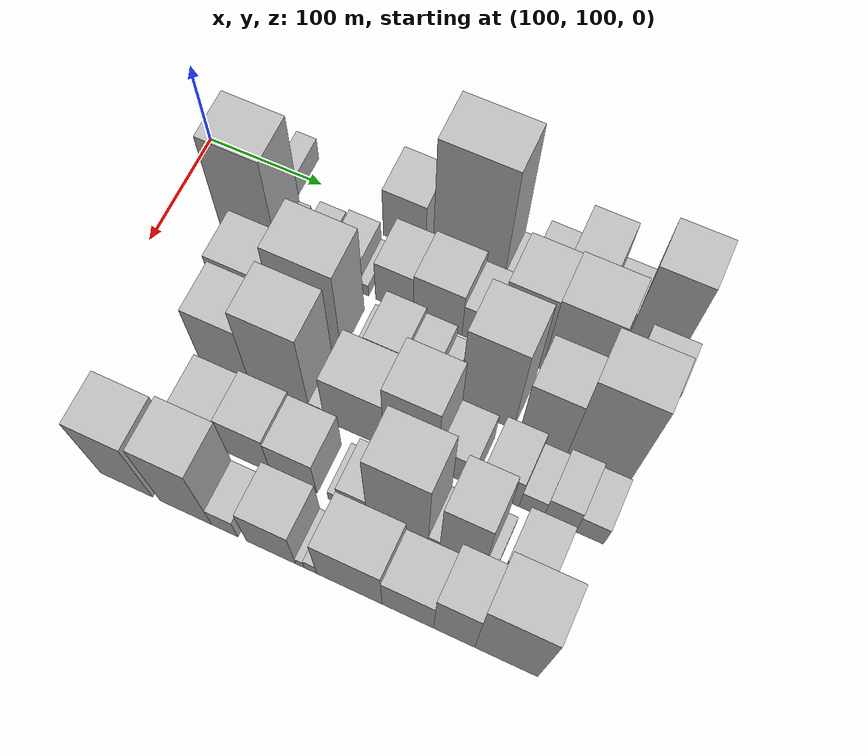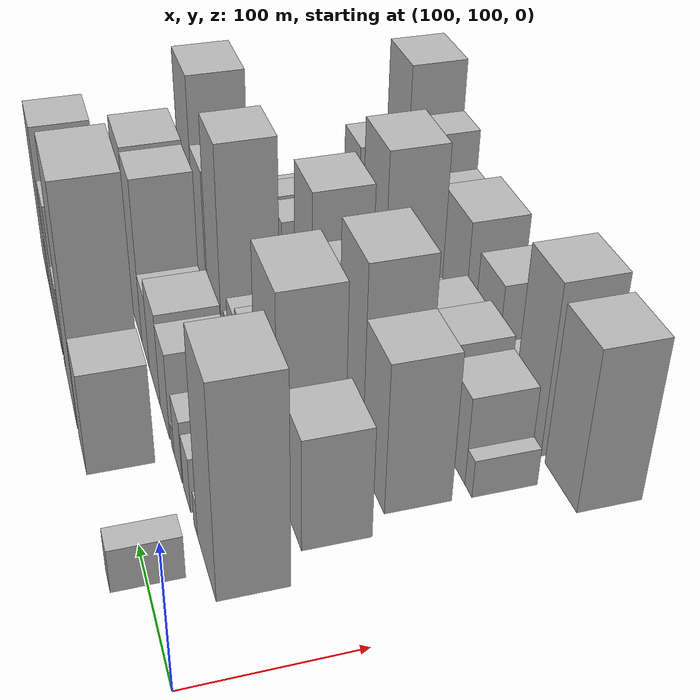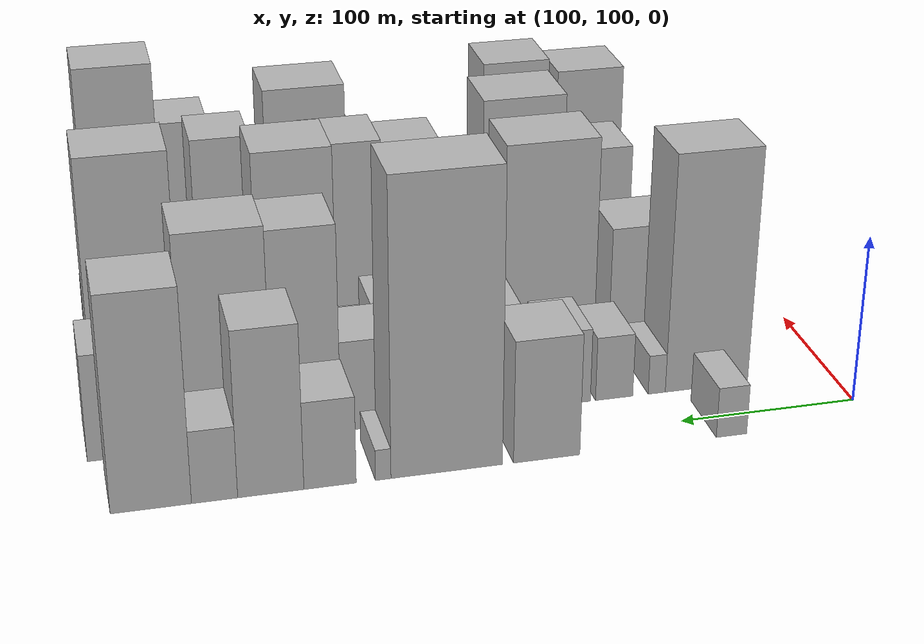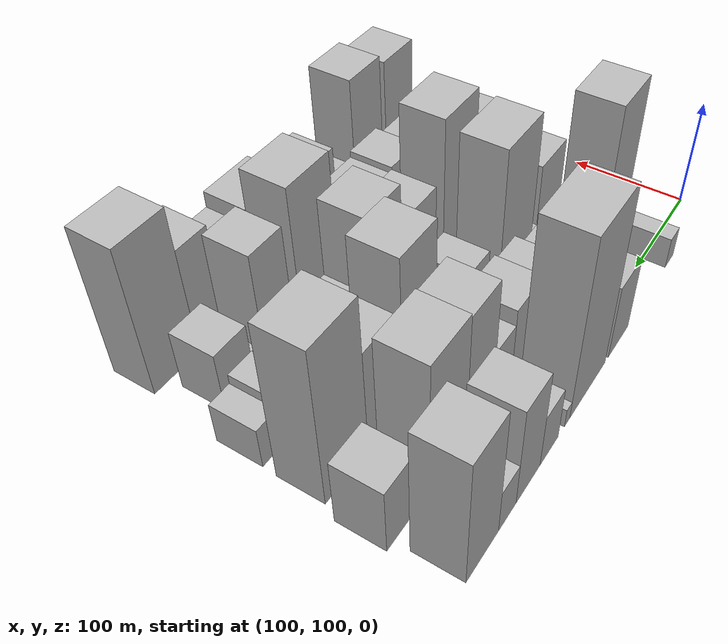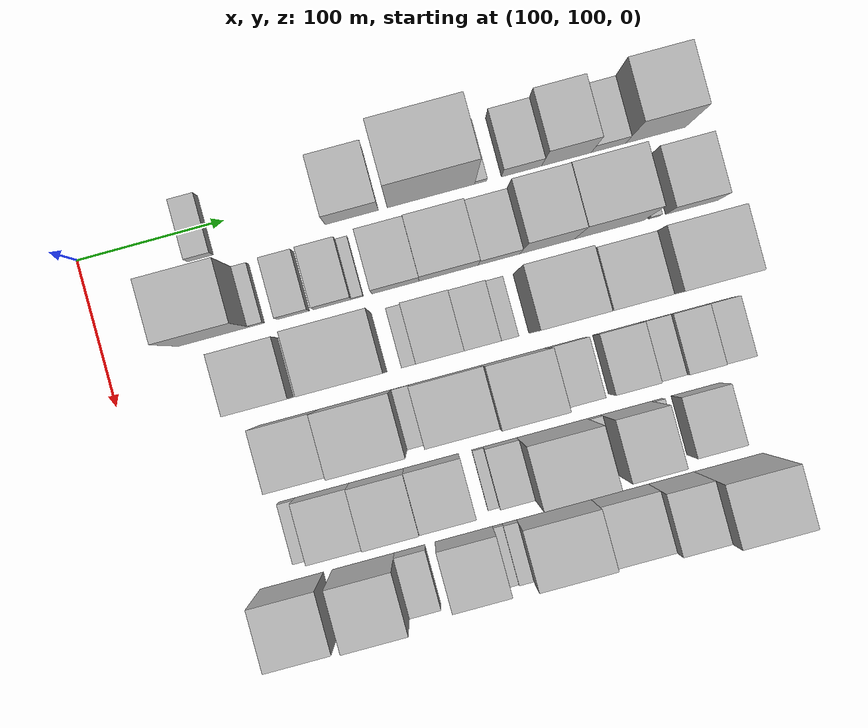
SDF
<sdf version="1.6">
 <world name="default">
  <model name="building_29">
   <static>1</static>
   <pose>100.0000 178.9773 0 0.000000 0.000000 0.000000</pose>
   <link name="link">
    <pose>0 0 15.00 0 0 0</pose>
    <collision name="collision"><geometry><box><size>40.0000 17.2565 30.0000</size></box></geometry></collision>
    <visual name="visual">
     <cast_shadows>0</cast_shadows>
     <geometry><box><size>40.0000 17.2565 30.0000</size></box></geometry>
     <material>
      <script>
       <uri>model://HANNAS_wall/materials/scripts</uri>
       <uri>model://HANNAS_wall/materials/textures</uri>
       <name>vrc/HANNAS_wall</name>
      </script>
     </material>
    </visual>
   </link>
  </model>
  <model name="building_30">
   <static>1</static>
   <pose>100.0000 281.8480 0 0.000000 0.000000 0.000000</pose>
   <link name="link">
    <pose>0 0 36.00 0 0 0</pose>
    <collision name="collision"><geometry><box><size>40.0000 36.1616 72.0000</size></box></geometry></collision>
    <visual name="visual">
     <cast_shadows>0</cast_shadows>
     <geometry><box><size>40.0000 36.1616 72.0000</size></box></geometry>
     <material>
      <script>
       <uri>model://HANNAS_wall/materials/scripts</uri>
       <uri>model://HANNAS_wall/materials/textures</uri>
       <name>vrc/HANNAS_wall</name>
      </script>
     </material>
    </visual>
   </link>
  </model>
  <model name="building_31">
   <static>1</static>
   <pose>100.0000 335.6738 0 0.000000 0.000000 0.000000</pose>
   <link name="link">
    <pose>0 0 85.50 0 0 0</pose>
    <collision name="collision"><geometry><box><size>40.0000 59.4901 171.0000</size></box></geometry></collision>
    <visual name="visual">
     <cast_shadows>0</cast_shadows>
     <geometry><box><size>40.0000 59.4901 171.0000</size></box></geometry>
     <material>
      <script>
       <uri>model://HANNAS_wall/materials/scripts</uri>
       <uri>model://HANNAS_wall/materials/textures</uri>
       <name>vrc/HANNAS_wall</name>
      </script>
     </material>
    </visual>
   </link>
  </model>
  <model name="building_32">
   <static>1</static>
   <pose>100.0000 369.5305 0 0.000000 0.000000 0.000000</pose>
   <link name="link">
    <pose>0 0 9.00 0 0 0</pose>
    <collision name="collision"><geometry><box><size>40.0000 8.2232 18.0000</size></box></geometry></collision>
    <visual name="visual">
     <cast_shadows>0</cast_shadows>
     <geometry><box><size>40.0000 8.2232 18.0000</size></box></geometry>
     <material>
      <script>
       <uri>model://HANNAS_wall/materials/scripts</uri>
       <uri>model://HANNAS_wall/materials/textures</uri>
       <name>vrc/HANNAS_wall</name>
      </script>
     </material>
    </visual>
   </link>
  </model>
  <model name="building_33">
   <static>1</static>
   <pose>100.0000 397.2680 0 0.000000 0.000000 0.000000</pose>
   <link name="link">
    <pose>0 0 25.50 0 0 0</pose>
    <collision name="collision"><geometry><box><size>40.0000 27.2518 51.0000</size></box></geometry></collision>
    <visual name="visual">
     <cast_shadows>0</cast_shadows>
     <geometry><box><size>40.0000 27.2518 51.0000</size></box></geometry>
     <material>
      <script>
       <uri>model://HANNAS_wall/materials/scripts</uri>
       <uri>model://HANNAS_wall/materials/textures</uri>
       <name>vrc/HANNAS_wall</name>
      </script>
     </material>
    </visual>
   </link>
  </model>
  <model name="building_34">
   <static>1</static>
   <pose>100.0000 427.9122 0 0.000000 0.000000 0.000000</pose>
   <link name="link">
    <pose>0 0 48.00 0 0 0</pose>
    <collision name="collision"><geometry><box><size>40.0000 34.0366 96.0000</size></box></geometry></collision>
    <visual name="visual">
     <cast_shadows>0</cast_shadows>
     <geometry><box><size>40.0000 34.0366 96.0000</size></box></geometry>
     <material>
      <script>
       <uri>model://HANNAS_wall/materials/scripts</uri>
       <uri>model://HANNAS_wall/materials/textures</uri>
       <name>vrc/HANNAS_wall</name>
      </script>
     </material>
    </visual>
   </link>
  </model>
  <model name="building_35">
   <static>1</static>
   <pose>100.0000 456.6429 0 0.000000 0.000000 0.000000</pose>
   <link name="link">
    <pose>0 0 21.00 0 0 0</pose>
    <collision name="collision"><geometry><box><size>40.0000 23.4248 42.0000</size></box></geometry></collision>
    <visual name="visual">
     <cast_shadows>0</cast_shadows>
     <geometry><box><size>40.0000 23.4248 42.0000</size></box></geometry>
     <material>
      <script>
       <uri>model://HANNAS_wall/materials/scripts</uri>
       <uri>model://HANNAS_wall/materials/textures</uri>
       <name>vrc/HANNAS_wall</name>
      </script>
     </material>
    </visual>
   </link>
  </model>
  <model name="building_36">
   <static>1</static>
   <pose>100.0000 488.7600 0 0.000000 0.000000 0.000000</pose>
   <link name="link">
    <pose>0 0 61.50 0 0 0</pose>
    <collision name="collision"><geometry><box><size>40.0000 40.8094 123.0000</size></box></geometry></collision>
    <visual name="visual">
     <cast_shadows>0</cast_shadows>
     <geometry><box><size>40.0000 40.8094 123.0000</size></box></geometry>
     <material>
      <script>
       <uri>model://HANNAS_wall/materials/scripts</uri>
       <uri>model://HANNAS_wall/materials/textures</uri>
       <name>vrc/HANNAS_wall</name>
      </script>
     </material>
    </visual>
   </link>
  </model>
  <model name="building_77">
   <static>1</static>
   <pose>152.0000 174.0249 0 0.000000 0.000000 0.000000</pose>
   <link name="link">
    <pose>0 0 72.00 0 0 0</pose>
    <collision name="collision"><geometry><box><size>40.0000 48.6821 144.0000</size></box></geometry></collision>
    <visual name="visual">
     <cast_shadows>0</cast_shadows>
     <geometry><box><size>40.0000 48.6821 144.0000</size></box></geometry>
     <material>
      <script>
       <uri>model://HANNAS_wall/materials/scripts</uri>
       <uri>model://HANNAS_wall/materials/textures</uri>
       <name>vrc/HANNAS_wall</name>
      </script>
     </material>
    </visual>
   </link>
  </model>
  <model name="building_78">
   <static>1</static>
   <pose>152.0000 203.3785 0 0.000000 0.000000 0.000000</pose>
   <link name="link">
    <pose>0 0 12.00 0 0 0</pose>
    <collision name="collision"><geometry><box><size>40.0000 10.0251 24.0000</size></box></geometry></collision>
    <visual name="visual">
     <cast_shadows>0</cast_shadows>
     <geometry><box><size>40.0000 10.0251 24.0000</size></box></geometry>
     <material>
      <script>
       <uri>model://HANNAS_wall/materials/scripts</uri>
       <uri>model://HANNAS_wall/materials/textures</uri>
       <name>vrc/HANNAS_wall</name>
      </script>
     </material>
    </visual>
   </link>
  </model>
  <model name="building_79">
   <static>1</static>
   <pose>152.0000 228.1953 0 0.000000 0.000000 0.000000</pose>
   <link name="link">
    <pose>0 0 19.50 0 0 0</pose>
    <collision name="collision"><geometry><box><size>40.0000 21.6085 39.0000</size></box></geometry></collision>
    <visual name="visual">
     <cast_shadows>0</cast_shadows>
     <geometry><box><size>40.0000 21.6085 39.0000</size></box></geometry>
     <material>
      <script>
       <uri>model://HANNAS_wall/materials/scripts</uri>
       <uri>model://HANNAS_wall/materials/textures</uri>
       <name>vrc/HANNAS_wall</name>
      </script>
     </material>
    </visual>
   </link>
  </model>
  <model name="building_80">
   <static>1</static>
   <pose>152.0000 254.9232 0 0.000000 0.000000 0.000000</pose>
   <link name="link">
    <pose>0 0 22.50 0 0 0</pose>
    <collision name="collision"><geometry><box><size>40.0000 25.8473 45.0000</size></box></geometry></collision>
    <visual name="visual">
     <cast_shadows>0</cast_shadows>
     <geometry><box><size>40.0000 25.8473 45.0000</size></box></geometry>
     <material>
      <script>
       <uri>model://HANNAS_wall/materials/scripts</uri>
       <uri>model://HANNAS_wall/materials/textures</uri>
       <name>vrc/HANNAS_wall</name>
      </script>
     </material>
    </visual>
   </link>
  </model>
  <model name="building_81">
   <static>1</static>
   <pose>152.0000 271.7661 0 0.000000 0.000000 0.000000</pose>
   <link name="link">
    <pose>0 0 9.00 0 0 0</pose>
    <collision name="collision"><geometry><box><size>40.0000 7.8384 18.0000</size></box></geometry></collision>
    <visual name="visual">
     <cast_shadows>0</cast_shadows>
     <geometry><box><size>40.0000 7.8384 18.0000</size></box></geometry>
     <material>
      <script>
       <uri>model://HANNAS_wall/materials/scripts</uri>
       <uri>model://HANNAS_wall/materials/textures</uri>
       <name>vrc/HANNAS_wall</name>
      </script>
     </material>
    </visual>
   </link>
  </model>
  <model name="building_82">
   <static>1</static>
   <pose>152.0000 297.5679 0 0.000000 0.000000 0.000000</pose>
   <link name="link">
    <pose>0 0 31.50 0 0 0</pose>
    <collision name="collision"><geometry><box><size>40.0000 31.7653 63.0000</size></box></geometry></collision>
    <visual name="visual">
     <cast_shadows>0</cast_shadows>
     <geometry><box><size>40.0000 31.7653 63.0000</size></box></geometry>
     <material>
      <script>
       <uri>model://HANNAS_wall/materials/scripts</uri>
       <uri>model://HANNAS_wall/materials/textures</uri>
       <name>vrc/HANNAS_wall</name>
      </script>
     </material>
    </visual>
   </link>
  </model>
  <model name="building_83">
   <static>1</static>
   <pose>152.0000 333.5257 0 0.000000 0.000000 0.000000</pose>
   <link name="link">
    <pose>0 0 34.50 0 0 0</pose>
    <collision name="collision"><geometry><box><size>40.0000 40.1503 69.0000</size></box></geometry></collision>
    <visual name="visual">
     <cast_shadows>0</cast_shadows>
     <geometry><box><size>40.0000 40.1503 69.0000</size></box></geometry>
     <material>
      <script>
       <uri>model://HANNAS_wall/materials/scripts</uri>
       <uri>model://HANNAS_wall/materials/textures</uri>
       <name>vrc/HANNAS_wall</name>
      </script>
     </material>
    </visual>
   </link>
  </model>
  <model name="building_84">
   <static>1</static>
   <pose>152.0000 367.8633 0 0.000000 0.000000 0.000000</pose>
   <link name="link">
    <pose>0 0 27.00 0 0 0</pose>
    <collision name="collision"><geometry><box><size>40.0000 28.5249 54.0000</size></box></geometry></collision>
    <visual name="visual">
     <cast_shadows>0</cast_shadows>
     <geometry><box><size>40.0000 28.5249 54.0000</size></box></geometry>
     <material>
      <script>
       <uri>model://HANNAS_wall/materials/scripts</uri>
       <uri>model://HANNAS_wall/materials/textures</uri>
       <name>vrc/HANNAS_wall</name>
      </script>
     </material>
    </visual>
   </link>
  </model>
  <model name="building_85">
   <static>1</static>
   <pose>152.0000 400.6688 0 0.000000 0.000000 0.000000</pose>
   <link name="link">
    <pose>0 0 61.50 0 0 0</pose>
    <collision name="collision"><geometry><box><size>40.0000 37.0861 123.0000</size></box></geometry></collision>
    <visual name="visual">
     <cast_shadows>0</cast_shadows>
     <geometry><box><size>40.0000 37.0861 123.0000</size></box></geometry>
     <material>
      <script>
       <uri>model://HANNAS_wall/materials/scripts</uri>
       <uri>model://HANNAS_wall/materials/textures</uri>
       <name>vrc/HANNAS_wall</name>
      </script>
     </material>
    </visual>
   </link>
  </model>
  <model name="building_86">
   <static>1</static>
   <pose>152.0000 442.8863 0 0.000000 0.000000 0.000000</pose>
   <link name="link">
    <pose>0 0 63.00 0 0 0</pose>
    <collision name="collision"><geometry><box><size>40.0000 47.3491 126.0000</size></box></geometry></collision>
    <visual name="visual">
     <cast_shadows>0</cast_shadows>
     <geometry><box><size>40.0000 47.3491 126.0000</size></box></geometry>
     <material>
      <script>
       <uri>model://HANNAS_wall/materials/scripts</uri>
       <uri>model://HANNAS_wall/materials/textures</uri>
       <name>vrc/HANNAS_wall</name>
      </script>
     </material>
    </visual>
   </link>
  </model>
  <model name="building_87">
   <static>1</static>
   <pose>152.0000 473.4281 0 0.000000 0.000000 0.000000</pose>
   <link name="link">
    <pose>0 0 9.00 0 0 0</pose>
    <collision name="collision"><geometry><box><size>40.0000 7.7345 18.0000</size></box></geometry></collision>
    <visual name="visual">
     <cast_shadows>0</cast_shadows>
     <geometry><box><size>40.0000 7.7345 18.0000</size></box></geometry>
     <material>
      <script>
       <uri>model://HANNAS_wall/materials/scripts</uri>
       <uri>model://HANNAS_wall/materials/textures</uri>
       <name>vrc/HANNAS_wall</name>
      </script>
     </material>
    </visual>
   </link>
  </model>
  <model name="building_88">
   <static>1</static>
   <pose>152.0000 499.1810 0 0.000000 0.000000 0.000000</pose>
   <link name="link">
    <pose>0 0 31.50 0 0 0</pose>
    <collision name="collision"><geometry><box><size>40.0000 35.7713 63.0000</size></box></geometry></collision>
    <visual name="visual">
     <cast_shadows>0</cast_shadows>
     <geometry><box><size>40.0000 35.7713 63.0000</size></box></geometry>
     <material>
      <script>
       <uri>model://HANNAS_wall/materials/scripts</uri>
       <uri>model://HANNAS_wall/materials/textures</uri>
       <name>vrc/HANNAS_wall</name>
      </script>
     </material>
    </visual>
   </link>
  </model>
  <model name="building_134">
   <static>1</static>
   <pose>204.0000 193.8612 0 0.000000 0.000000 0.000000</pose>
   <link name="link">
    <pose>0 0 39.00 0 0 0</pose>
    <collision name="collision"><geometry><box><size>40.0000 42.5518 78.0000</size></box></geometry></collision>
    <visual name="visual">
     <cast_shadows>0</cast_shadows>
     <geometry><box><size>40.0000 42.5518 78.0000</size></box></geometry>
     <material>
      <script>
       <uri>model://HANNAS_wall/materials/scripts</uri>
       <uri>model://HANNAS_wall/materials/textures</uri>
       <name>vrc/HANNAS_wall</name>
      </script>
     </material>
    </visual>
   </link>
  </model>
  <model name="building_135">
   <static>1</static>
   <pose>204.0000 219.5820 0 0.000000 0.000000 0.000000</pose>
   <link name="link">
    <pose>0 0 9.00 0 0 0</pose>
    <collision name="collision"><geometry><box><size>40.0000 8.8897 18.0000</size></box></geometry></collision>
    <visual name="visual">
     <cast_shadows>0</cast_shadows>
     <geometry><box><size>40.0000 8.8897 18.0000</size></box></geometry>
     <material>
      <script>
       <uri>model://HANNAS_wall/materials/scripts</uri>
       <uri>model://HANNAS_wall/materials/textures</uri>
       <name>vrc/HANNAS_wall</name>
      </script>
     </material>
    </visual>
   </link>
  </model>
  <model name="building_136">
   <static>1</static>
   <pose>204.0000 250.8682 0 0.000000 0.000000 0.000000</pose>
   <link name="link">
    <pose>0 0 67.50 0 0 0</pose>
    <collision name="collision"><geometry><box><size>40.0000 53.6827 135.0000</size></box></geometry></collision>
    <visual name="visual">
     <cast_shadows>0</cast_shadows>
     <geometry><box><size>40.0000 53.6827 135.0000</size></box></geometry>
     <material>
      <script>
       <uri>model://HANNAS_wall/materials/scripts</uri>
       <uri>model://HANNAS_wall/materials/textures</uri>
       <name>vrc/HANNAS_wall</name>
      </script>
     </material>
    </visual>
   </link>
  </model>
  <model name="building_137">
   <static>1</static>
   <pose>204.0000 292.5848 0 0.000000 0.000000 0.000000</pose>
   <link name="link">
    <pose>0 0 10.50 0 0 0</pose>
    <collision name="collision"><geometry><box><size>40.0000 9.7504 21.0000</size></box></geometry></collision>
    <visual name="visual">
     <cast_shadows>0</cast_shadows>
     <geometry><box><size>40.0000 9.7504 21.0000</size></box></geometry>
     <material>
      <script>
       <uri>model://HANNAS_wall/materials/scripts</uri>
       <uri>model://HANNAS_wall/materials/textures</uri>
       <name>vrc/HANNAS_wall</name>
      </script>
     </material>
    </visual>
   </link>
  </model>
  <model name="building_138">
   <static>1</static>
   <pose>204.0000 313.3776 0 0.000000 0.000000 0.000000</pose>
   <link name="link">
    <pose>0 0 27.00 0 0 0</pose>
    <collision name="collision"><geometry><box><size>40.0000 31.8353 54.0000</size></box></geometry></collision>
    <visual name="visual">
     <cast_shadows>0</cast_shadows>
     <geometry><box><size>40.0000 31.8353 54.0000</size></box></geometry>
     <material>
      <script>
       <uri>model://HANNAS_wall/materials/scripts</uri>
       <uri>model://HANNAS_wall/materials/textures</uri>
       <name>vrc/HANNAS_wall</name>
      </script>
     </material>
    </visual>
   </link>
  </model>
  <model name="building_139">
   <static>1</static>
   <pose>204.0000 341.6613 0 0.000000 0.000000 0.000000</pose>
   <link name="link">
    <pose>0 0 22.50 0 0 0</pose>
    <collision name="collision"><geometry><box><size>40.0000 24.7320 45.0000</size></box></geometry></collision>
    <visual name="visual">
     <cast_shadows>0</cast_shadows>
     <geometry><box><size>40.0000 24.7320 45.0000</size></box></geometry>
     <material>
      <script>
       <uri>model://HANNAS_wall/materials/scripts</uri>
       <uri>model://HANNAS_wall/materials/textures</uri>
       <name>vrc/HANNAS_wall</name>
      </script>
     </material>
    </visual>
   </link>
  </model>
  <model name="building_140">
   <static>1</static>
   <pose>204.0000 360.1490 0 0.000000 0.000000 0.000000</pose>
   <link name="link">
    <pose>0 0 13.50 0 0 0</pose>
    <collision name="collision"><geometry><box><size>40.0000 12.2434 27.0000</size></box></geometry></collision>
    <visual name="visual">
     <cast_shadows>0</cast_shadows>
     <geometry><box><size>40.0000 12.2434 27.0000</size></box></geometry>
     <material>
      <script>
       <uri>model://HANNAS_wall/materials/scripts</uri>
       <uri>model://HANNAS_wall/materials/textures</uri>
       <name>vrc/HANNAS_wall</name>
      </script>
     </material>
    </visual>
   </link>
  </model>
  <model name="building_141">
   <static>1</static>
   <pose>204.0000 396.1517 0 0.000000 0.000000 0.000000</pose>
   <link name="link">
    <pose>0 0 72.00 0 0 0</pose>
    <collision name="collision"><geometry><box><size>40.0000 43.7620 144.0000</size></box></geometry></collision>
    <visual name="visual">
     <cast_shadows>0</cast_shadows>
     <geometry><box><size>40.0000 43.7620 144.0000</size></box></geometry>
     <material>
      <script>
       <uri>model://HANNAS_wall/materials/scripts</uri>
       <uri>model://HANNAS_wall/materials/textures</uri>
       <name>vrc/HANNAS_wall</name>
      </script>
     </material>
    </visual>
   </link>
  </model>
  <model name="building_142">
   <static>1</static>
   <pose>204.0000 442.1037 0 0.000000 0.000000 0.000000</pose>
   <link name="link">
    <pose>0 0 49.50 0 0 0</pose>
    <collision name="collision"><geometry><box><size>40.0000 38.1421 99.0000</size></box></geometry></collision>
    <visual name="visual">
     <cast_shadows>0</cast_shadows>
     <geometry><box><size>40.0000 38.1421 99.0000</size></box></geometry>
     <material>
      <script>
       <uri>model://HANNAS_wall/materials/scripts</uri>
       <uri>model://HANNAS_wall/materials/textures</uri>
       <name>vrc/HANNAS_wall</name>
      </script>
     </material>
    </visual>
   </link>
  </model>
  <model name="building_143">
   <static>1</static>
   <pose>204.0000 485.7362 0 0.000000 0.000000 0.000000</pose>
   <link name="link">
    <pose>0 0 75.00 0 0 0</pose>
    <collision name="collision"><geometry><box><size>40.0000 49.1228 150.0000</size></box></geometry></collision>
    <visual name="visual">
     <cast_shadows>0</cast_shadows>
     <geometry><box><size>40.0000 49.1228 150.0000</size></box></geometry>
     <material>
      <script>
       <uri>model://HANNAS_wall/materials/scripts</uri>
       <uri>model://HANNAS_wall/materials/textures</uri>
       <name>vrc/HANNAS_wall</name>
      </script>
     </material>
    </visual>
   </link>
  </model>
  <model name="building_181">
   <static>1</static>
   <pose>256.0000 208.1440 0 0.000000 0.000000 0.000000</pose>
   <link name="link">
    <pose>0 0 52.50 0 0 0</pose>
    <collision name="collision"><geometry><box><size>40.0000 41.1019 105.0000</size></box></geometry></collision>
    <visual name="visual">
     <cast_shadows>0</cast_shadows>
     <geometry><box><size>40.0000 41.1019 105.0000</size></box></geometry>
     <material>
      <script>
       <uri>model://HANNAS_wall/materials/scripts</uri>
       <uri>model://HANNAS_wall/materials/textures</uri>
       <name>vrc/HANNAS_wall</name>
      </script>
     </material>
    </visual>
   </link>
  </model>
  <model name="building_182">
   <static>1</static>
   <pose>256.0000 253.1192 0 0.000000 0.000000 0.000000</pose>
   <link name="link">
    <pose>0 0 70.50 0 0 0</pose>
    <collision name="collision"><geometry><box><size>40.0000 48.8485 141.0000</size></box></geometry></collision>
    <visual name="visual">
     <cast_shadows>0</cast_shadows>
     <geometry><box><size>40.0000 48.8485 141.0000</size></box></geometry>
     <material>
      <script>
       <uri>model://HANNAS_wall/materials/scripts</uri>
       <uri>model://HANNAS_wall/materials/textures</uri>
       <name>vrc/HANNAS_wall</name>
      </script>
     </material>
    </visual>
   </link>
  </model>
  <model name="building_183">
   <static>1</static>
   <pose>256.0000 283.4226 0 0.000000 0.000000 0.000000</pose>
   <link name="link">
    <pose>0 0 12.00 0 0 0</pose>
    <collision name="collision"><geometry><box><size>40.0000 11.7583 24.0000</size></box></geometry></collision>
    <visual name="visual">
     <cast_shadows>0</cast_shadows>
     <geometry><box><size>40.0000 11.7583 24.0000</size></box></geometry>
     <material>
      <script>
       <uri>model://HANNAS_wall/materials/scripts</uri>
       <uri>model://HANNAS_wall/materials/textures</uri>
       <name>vrc/HANNAS_wall</name>
      </script>
     </material>
    </visual>
   </link>
  </model>
  <model name="building_184">
   <static>1</static>
   <pose>256.0000 313.4019 0 0.000000 0.000000 0.000000</pose>
   <link name="link">
    <pose>0 0 43.50 0 0 0</pose>
    <collision name="collision"><geometry><box><size>40.0000 48.2002 87.0000</size></box></geometry></collision>
    <visual name="visual">
     <cast_shadows>0</cast_shadows>
     <geometry><box><size>40.0000 48.2002 87.0000</size></box></geometry>
     <material>
      <script>
       <uri>model://HANNAS_wall/materials/scripts</uri>
       <uri>model://HANNAS_wall/materials/textures</uri>
       <name>vrc/HANNAS_wall</name>
      </script>
     </material>
    </visual>
   </link>
  </model>
  <model name="building_185">
   <static>1</static>
   <pose>256.0000 358.9245 0 0.000000 0.000000 0.000000</pose>
   <link name="link">
    <pose>0 0 61.50 0 0 0</pose>
    <collision name="collision"><geometry><box><size>40.0000 42.8450 123.0000</size></box></geometry></collision>
    <visual name="visual">
     <cast_shadows>0</cast_shadows>
     <geometry><box><size>40.0000 42.8450 123.0000</size></box></geometry>
     <material>
      <script>
       <uri>model://HANNAS_wall/materials/scripts</uri>
       <uri>model://HANNAS_wall/materials/textures</uri>
       <name>vrc/HANNAS_wall</name>
      </script>
     </material>
    </visual>
   </link>
  </model>
  <model name="building_186">
   <static>1</static>
   <pose>256.0000 394.3207 0 0.000000 0.000000 0.000000</pose>
   <link name="link">
    <pose>0 0 25.50 0 0 0</pose>
    <collision name="collision"><geometry><box><size>40.0000 27.9474 51.0000</size></box></geometry></collision>
    <visual name="visual">
     <cast_shadows>0</cast_shadows>
     <geometry><box><size>40.0000 27.9474 51.0000</size></box></geometry>
     <material>
      <script>
       <uri>model://HANNAS_wall/materials/scripts</uri>
       <uri>model://HANNAS_wall/materials/textures</uri>
       <name>vrc/HANNAS_wall</name>
      </script>
     </material>
    </visual>
   </link>
  </model>
  <model name="building_187">
   <static>1</static>
   <pose>256.0000 429.3830 0 0.000000 0.000000 0.000000</pose>
   <link name="link">
    <pose>0 0 28.50 0 0 0</pose>
    <collision name="collision"><geometry><box><size>40.0000 30.1773 57.0000</size></box></geometry></collision>
    <visual name="visual">
     <cast_shadows>0</cast_shadows>
     <geometry><box><size>40.0000 30.1773 57.0000</size></box></geometry>
     <material>
      <script>
       <uri>model://HANNAS_wall/materials/scripts</uri>
       <uri>model://HANNAS_wall/materials/textures</uri>
       <name>vrc/HANNAS_wall</name>
      </script>
     </material>
    </visual>
   </link>
  </model>
  <model name="building_188">
   <static>1</static>
   <pose>256.0000 453.9864 0 0.000000 0.000000 0.000000</pose>
   <link name="link">
    <pose>0 0 18.00 0 0 0</pose>
    <collision name="collision"><geometry><box><size>40.0000 19.0295 36.0000</size></box></geometry></collision>
    <visual name="visual">
     <cast_shadows>0</cast_shadows>
     <geometry><box><size>40.0000 19.0295 36.0000</size></box></geometry>
     <material>
      <script>
       <uri>model://HANNAS_wall/materials/scripts</uri>
       <uri>model://HANNAS_wall/materials/textures</uri>
       <name>vrc/HANNAS_wall</name>
      </script>
     </material>
    </visual>
   </link>
  </model>
  <model name="building_189">
   <static>1</static>
   <pose>256.0000 475.8625 0 0.000000 0.000000 0.000000</pose>
   <link name="link">
    <pose>0 0 24.00 0 0 0</pose>
    <collision name="collision"><geometry><box><size>40.0000 24.7225 48.0000</size></box></geometry></collision>
    <visual name="visual">
     <cast_shadows>0</cast_shadows>
     <geometry><box><size>40.0000 24.7225 48.0000</size></box></geometry>
     <material>
      <script>
       <uri>model://HANNAS_wall/materials/scripts</uri>
       <uri>model://HANNAS_wall/materials/textures</uri>
       <name>vrc/HANNAS_wall</name>
      </script>
     </material>
    </visual>
   </link>
  </model>
  <model name="building_190">
   <static>1</static>
   <pose>256.0000 498.8279 0 0.000000 0.000000 0.000000</pose>
   <link name="link">
    <pose>0 0 19.50 0 0 0</pose>
    <collision name="collision"><geometry><box><size>40.0000 21.2084 39.0000</size></box></geometry></collision>
    <visual name="visual">
     <cast_shadows>0</cast_shadows>
     <geometry><box><size>40.0000 21.2084 39.0000</size></box></geometry>
     <material>
      <script>
       <uri>model://HANNAS_wall/materials/scripts</uri>
       <uri>model://HANNAS_wall/materials/textures</uri>
       <name>vrc/HANNAS_wall</name>
      </script>
     </material>
    </visual>
   </link>
  </model>
  <model name="building_229">
   <static>1</static>
   <pose>308.0000 192.4467 0 0.000000 0.000000 0.000000</pose>
   <link name="link">
    <pose>0 0 13.50 0 0 0</pose>
    <collision name="collision"><geometry><box><size>40.0000 10.9333 27.0000</size></box></geometry></collision>
    <visual name="visual">
     <cast_shadows>0</cast_shadows>
     <geometry><box><size>40.0000 10.9333 27.0000</size></box></geometry>
     <material>
      <script>
       <uri>model://HANNAS_wall/materials/scripts</uri>
       <uri>model://HANNAS_wall/materials/textures</uri>
       <name>vrc/HANNAS_wall</name>
      </script>
     </material>
    </visual>
   </link>
  </model>
  <model name="building_230">
   <static>1</static>
   <pose>308.0000 216.2116 0 0.000000 0.000000 0.000000</pose>
   <link name="link">
    <pose>0 0 31.50 0 0 0</pose>
    <collision name="collision"><geometry><box><size>40.0000 36.5964 63.0000</size></box></geometry></collision>
    <visual name="visual">
     <cast_shadows>0</cast_shadows>
     <geometry><box><size>40.0000 36.5964 63.0000</size></box></geometry>
     <material>
      <script>
       <uri>model://HANNAS_wall/materials/scripts</uri>
       <uri>model://HANNAS_wall/materials/textures</uri>
       <name>vrc/HANNAS_wall</name>
      </script>
     </material>
    </visual>
   </link>
  </model>
  <model name="building_231">
   <static>1</static>
   <pose>308.0000 253.0867 0 0.000000 0.000000 0.000000</pose>
   <link name="link">
    <pose>0 0 36.00 0 0 0</pose>
    <collision name="collision"><geometry><box><size>40.0000 37.1538 72.0000</size></box></geometry></collision>
    <visual name="visual">
     <cast_shadows>0</cast_shadows>
     <geometry><box><size>40.0000 37.1538 72.0000</size></box></geometry>
     <material>
      <script>
       <uri>model://HANNAS_wall/materials/scripts</uri>
       <uri>model://HANNAS_wall/materials/textures</uri>
       <name>vrc/HANNAS_wall</name>
      </script>
     </material>
    </visual>
   </link>
  </model>
  <model name="building_232">
   <static>1</static>
   <pose>308.0000 290.2655 0 0.000000 0.000000 0.000000</pose>
   <link name="link">
    <pose>0 0 33.00 0 0 0</pose>
    <collision name="collision"><geometry><box><size>40.0000 37.2037 66.0000</size></box></geometry></collision>
    <visual name="visual">
     <cast_shadows>0</cast_shadows>
     <geometry><box><size>40.0000 37.2037 66.0000</size></box></geometry>
     <material>
      <script>
       <uri>model://HANNAS_wall/materials/scripts</uri>
       <uri>model://HANNAS_wall/materials/textures</uri>
       <name>vrc/HANNAS_wall</name>
      </script>
     </material>
    </visual>
   </link>
  </model>
  <model name="building_233">
   <static>1</static>
   <pose>308.0000 321.6572 0 0.000000 0.000000 0.000000</pose>
   <link name="link">
    <pose>0 0 9.00 0 0 0</pose>
    <collision name="collision"><geometry><box><size>40.0000 7.5798 18.0000</size></box></geometry></collision>
    <visual name="visual">
     <cast_shadows>0</cast_shadows>
     <geometry><box><size>40.0000 7.5798 18.0000</size></box></geometry>
     <material>
      <script>
       <uri>model://HANNAS_wall/materials/scripts</uri>
       <uri>model://HANNAS_wall/materials/textures</uri>
       <name>vrc/HANNAS_wall</name>
      </script>
     </material>
    </visual>
   </link>
  </model>
  <model name="building_234">
   <static>1</static>
   <pose>308.0000 336.9787 0 0.000000 0.000000 0.000000</pose>
   <link name="link">
    <pose>0 0 19.50 0 0 0</pose>
    <collision name="collision"><geometry><box><size>40.0000 23.0632 39.0000</size></box></geometry></collision>
    <visual name="visual">
     <cast_shadows>0</cast_shadows>
     <geometry><box><size>40.0000 23.0632 39.0000</size></box></geometry>
     <material>
      <script>
       <uri>model://HANNAS_wall/materials/scripts</uri>
       <uri>model://HANNAS_wall/materials/textures</uri>
       <name>vrc/HANNAS_wall</name>
      </script>
     </material>
    </visual>
   </link>
  </model>
  <model name="building_235">
   <static>1</static>
   <pose>308.0000 372.5188 0 0.000000 0.000000 0.000000</pose>
   <link name="link">
    <pose>0 0 69.00 0 0 0</pose>
    <collision name="collision"><geometry><box><size>40.0000 48.0169 138.0000</size></box></geometry></collision>
    <visual name="visual">
     <cast_shadows>0</cast_shadows>
     <geometry><box><size>40.0000 48.0169 138.0000</size></box></geometry>
     <material>
      <script>
       <uri>model://HANNAS_wall/materials/scripts</uri>
       <uri>model://HANNAS_wall/materials/textures</uri>
       <name>vrc/HANNAS_wall</name>
      </script>
     </material>
    </visual>
   </link>
  </model>
  <model name="building_236">
   <static>1</static>
   <pose>308.0000 401.0121 0 0.000000 0.000000 0.000000</pose>
   <link name="link">
    <pose>0 0 10.50 0 0 0</pose>
    <collision name="collision"><geometry><box><size>40.0000 8.9698 21.0000</size></box></geometry></collision>
    <visual name="visual">
     <cast_shadows>0</cast_shadows>
     <geometry><box><size>40.0000 8.9698 21.0000</size></box></geometry>
     <material>
      <script>
       <uri>model://HANNAS_wall/materials/scripts</uri>
       <uri>model://HANNAS_wall/materials/textures</uri>
       <name>vrc/HANNAS_wall</name>
      </script>
     </material>
    </visual>
   </link>
  </model>
  <model name="building_237">
   <static>1</static>
   <pose>308.0000 422.8429 0 0.000000 0.000000 0.000000</pose>
   <link name="link">
    <pose>0 0 55.50 0 0 0</pose>
    <collision name="collision"><geometry><box><size>40.0000 34.6917 111.0000</size></box></geometry></collision>
    <visual name="visual">
     <cast_shadows>0</cast_shadows>
     <geometry><box><size>40.0000 34.6917 111.0000</size></box></geometry>
     <material>
      <script>
       <uri>model://HANNAS_wall/materials/scripts</uri>
       <uri>model://HANNAS_wall/materials/textures</uri>
       <name>vrc/HANNAS_wall</name>
      </script>
     </material>
    </visual>
   </link>
  </model>
  <model name="building_238">
   <static>1</static>
   <pose>308.0000 443.9276 0 0.000000 0.000000 0.000000</pose>
   <link name="link">
    <pose>0 0 9.00 0 0 0</pose>
    <collision name="collision"><geometry><box><size>40.0000 7.4776 18.0000</size></box></geometry></collision>
    <visual name="visual">
     <cast_shadows>0</cast_shadows>
     <geometry><box><size>40.0000 7.4776 18.0000</size></box></geometry>
     <material>
      <script>
       <uri>model://HANNAS_wall/materials/scripts</uri>
       <uri>model://HANNAS_wall/materials/textures</uri>
       <name>vrc/HANNAS_wall</name>
      </script>
     </material>
    </visual>
   </link>
  </model>
  <model name="building_239">
   <static>1</static>
   <pose>308.0000 470.1644 0 0.000000 0.000000 0.000000</pose>
   <link name="link">
    <pose>0 0 28.50 0 0 0</pose>
    <collision name="collision"><geometry><box><size>40.0000 32.9960 57.0000</size></box></geometry></collision>
    <visual name="visual">
     <cast_shadows>0</cast_shadows>
     <geometry><box><size>40.0000 32.9960 57.0000</size></box></geometry>
     <material>
      <script>
       <uri>model://HANNAS_wall/materials/scripts</uri>
       <uri>model://HANNAS_wall/materials/textures</uri>
       <name>vrc/HANNAS_wall</name>
      </script>
     </material>
    </visual>
   </link>
  </model>
  <model name="building_284">
   <static>1</static>
   <pose>360.0000 181.4387 0 0.000000 0.000000 0.000000</pose>
   <link name="link">
    <pose>0 0 57.00 0 0 0</pose>
    <collision name="collision"><geometry><box><size>40.0000 42.9755 114.0000</size></box></geometry></collision>
    <visual name="visual">
     <cast_shadows>0</cast_shadows>
     <geometry><box><size>40.0000 42.9755 114.0000</size></box></geometry>
     <material>
      <script>
       <uri>model://HANNAS_wall/materials/scripts</uri>
       <uri>model://HANNAS_wall/materials/textures</uri>
       <name>vrc/HANNAS_wall</name>
      </script>
     </material>
    </visual>
   </link>
  </model>
  <model name="building_285">
   <static>1</static>
   <pose>360.0000 230.0145 0 0.000000 0.000000 0.000000</pose>
   <link name="link">
    <pose>0 0 61.50 0 0 0</pose>
    <collision name="collision"><geometry><box><size>40.0000 42.1761 123.0000</size></box></geometry></collision>
    <visual name="visual">
     <cast_shadows>0</cast_shadows>
     <geometry><box><size>40.0000 42.1761 123.0000</size></box></geometry>
     <material>
      <script>
       <uri>model://HANNAS_wall/materials/scripts</uri>
       <uri>model://HANNAS_wall/materials/textures</uri>
       <name>vrc/HANNAS_wall</name>
      </script>
     </material>
    </visual>
   </link>
  </model>
  <model name="building_286">
   <static>1</static>
   <pose>360.0000 261.5557 0 0.000000 0.000000 0.000000</pose>
   <link name="link">
    <pose>0 0 19.50 0 0 0</pose>
    <collision name="collision"><geometry><box><size>40.0000 20.9062 39.0000</size></box></geometry></collision>
    <visual name="visual">
     <cast_shadows>0</cast_shadows>
     <geometry><box><size>40.0000 20.9062 39.0000</size></box></geometry>
     <material>
      <script>
       <uri>model://HANNAS_wall/materials/scripts</uri>
       <uri>model://HANNAS_wall/materials/textures</uri>
       <name>vrc/HANNAS_wall</name>
      </script>
     </material>
    </visual>
   </link>
  </model>
  <model name="building_287">
   <static>1</static>
   <pose>360.0000 298.5034 0 0.000000 0.000000 0.000000</pose>
   <link name="link">
    <pose>0 0 37.50 0 0 0</pose>
    <collision name="collision"><geometry><box><size>40.0000 38.9892 75.0000</size></box></geometry></collision>
    <visual name="visual">
     <cast_shadows>0</cast_shadows>
     <geometry><box><size>40.0000 38.9892 75.0000</size></box></geometry>
     <material>
      <script>
       <uri>model://HANNAS_wall/materials/scripts</uri>
       <uri>model://HANNAS_wall/materials/textures</uri>
       <name>vrc/HANNAS_wall</name>
      </script>
     </material>
    </visual>
   </link>
  </model>
  <model name="building_288">
   <static>1</static>
   <pose>360.0000 321.2929 0 0.000000 0.000000 0.000000</pose>
   <link name="link">
    <pose>0 0 7.50 0 0 0</pose>
    <collision name="collision"><geometry><box><size>40.0000 6.5898 15.0000</size></box></geometry></collision>
    <visual name="visual">
     <cast_shadows>0</cast_shadows>
     <geometry><box><size>40.0000 6.5898 15.0000</size></box></geometry>
     <material>
      <script>
       <uri>model://HANNAS_wall/materials/scripts</uri>
       <uri>model://HANNAS_wall/materials/textures</uri>
       <name>vrc/HANNAS_wall</name>
      </script>
     </material>
    </visual>
   </link>
  </model>
  <model name="building_289">
   <static>1</static>
   <pose>360.0000 329.5068 0 0.000000 0.000000 0.000000</pose>
   <link name="link">
    <pose>0 0 10.50 0 0 0</pose>
    <collision name="collision"><geometry><box><size>40.0000 9.8378 21.0000</size></box></geometry></collision>
    <visual name="visual">
     <cast_shadows>0</cast_shadows>
     <geometry><box><size>40.0000 9.8378 21.0000</size></box></geometry>
     <material>
      <script>
       <uri>model://HANNAS_wall/materials/scripts</uri>
       <uri>model://HANNAS_wall/materials/textures</uri>
       <name>vrc/HANNAS_wall</name>
      </script>
     </material>
    </visual>
   </link>
  </model>
  <model name="building_290">
   <static>1</static>
   <pose>360.0000 359.8394 0 0.000000 0.000000 0.000000</pose>
   <link name="link">
    <pose>0 0 43.50 0 0 0</pose>
    <collision name="collision"><geometry><box><size>40.0000 50.8273 87.0000</size></box></geometry></collision>
    <visual name="visual">
     <cast_shadows>0</cast_shadows>
     <geometry><box><size>40.0000 50.8273 87.0000</size></box></geometry>
     <material>
      <script>
       <uri>model://HANNAS_wall/materials/scripts</uri>
       <uri>model://HANNAS_wall/materials/textures</uri>
       <name>vrc/HANNAS_wall</name>
      </script>
     </material>
    </visual>
   </link>
  </model>
  <model name="building_291">
   <static>1</static>
   <pose>360.0000 404.7631 0 0.000000 0.000000 0.000000</pose>
   <link name="link">
    <pose>0 0 36.00 0 0 0</pose>
    <collision name="collision"><geometry><box><size>40.0000 39.0201 72.0000</size></box></geometry></collision>
    <visual name="visual">
     <cast_shadows>0</cast_shadows>
     <geometry><box><size>40.0000 39.0201 72.0000</size></box></geometry>
     <material>
      <script>
       <uri>model://HANNAS_wall/materials/scripts</uri>
       <uri>model://HANNAS_wall/materials/textures</uri>
       <name>vrc/HANNAS_wall</name>
      </script>
     </material>
    </visual>
   </link>
  </model>
  <model name="building_292">
   <static>1</static>
   <pose>360.0000 439.8148 0 0.000000 0.000000 0.000000</pose>
   <link name="link">
    <pose>0 0 51.00 0 0 0</pose>
    <collision name="collision"><geometry><box><size>40.0000 31.0832 102.0000</size></box></geometry></collision>
    <visual name="visual">
     <cast_shadows>0</cast_shadows>
     <geometry><box><size>40.0000 31.0832 102.0000</size></box></geometry>
     <material>
      <script>
       <uri>model://HANNAS_wall/materials/scripts</uri>
       <uri>model://HANNAS_wall/materials/textures</uri>
       <name>vrc/HANNAS_wall</name>
      </script>
     </material>
    </visual>
   </link>
  </model>
  <model name="building_293">
   <static>1</static>
   <pose>360.0000 478.8428 0 0.000000 0.000000 0.000000</pose>
   <link name="link">
    <pose>0 0 70.50 0 0 0</pose>
    <collision name="collision"><geometry><box><size>40.0000 46.9728 141.0000</size></box></geometry></collision>
    <visual name="visual">
     <cast_shadows>0</cast_shadows>
     <geometry><box><size>40.0000 46.9728 141.0000</size></box></geometry>
     <material>
      <script>
       <uri>model://HANNAS_wall/materials/scripts</uri>
       <uri>model://HANNAS_wall/materials/textures</uri>
       <name>vrc/HANNAS_wall</name>
      </script>
     </material>
    </visual>
   </link>
  </model>
 </world>
</sdf>
